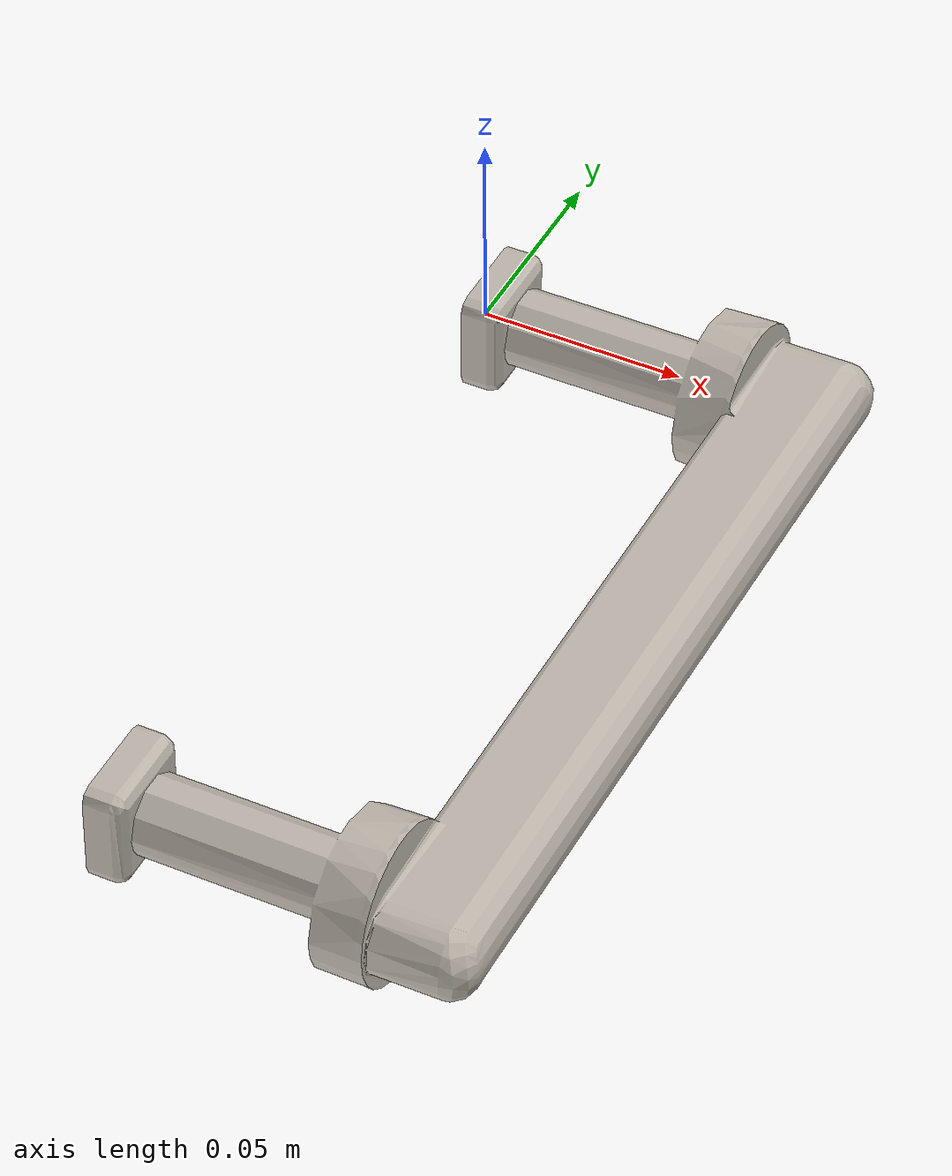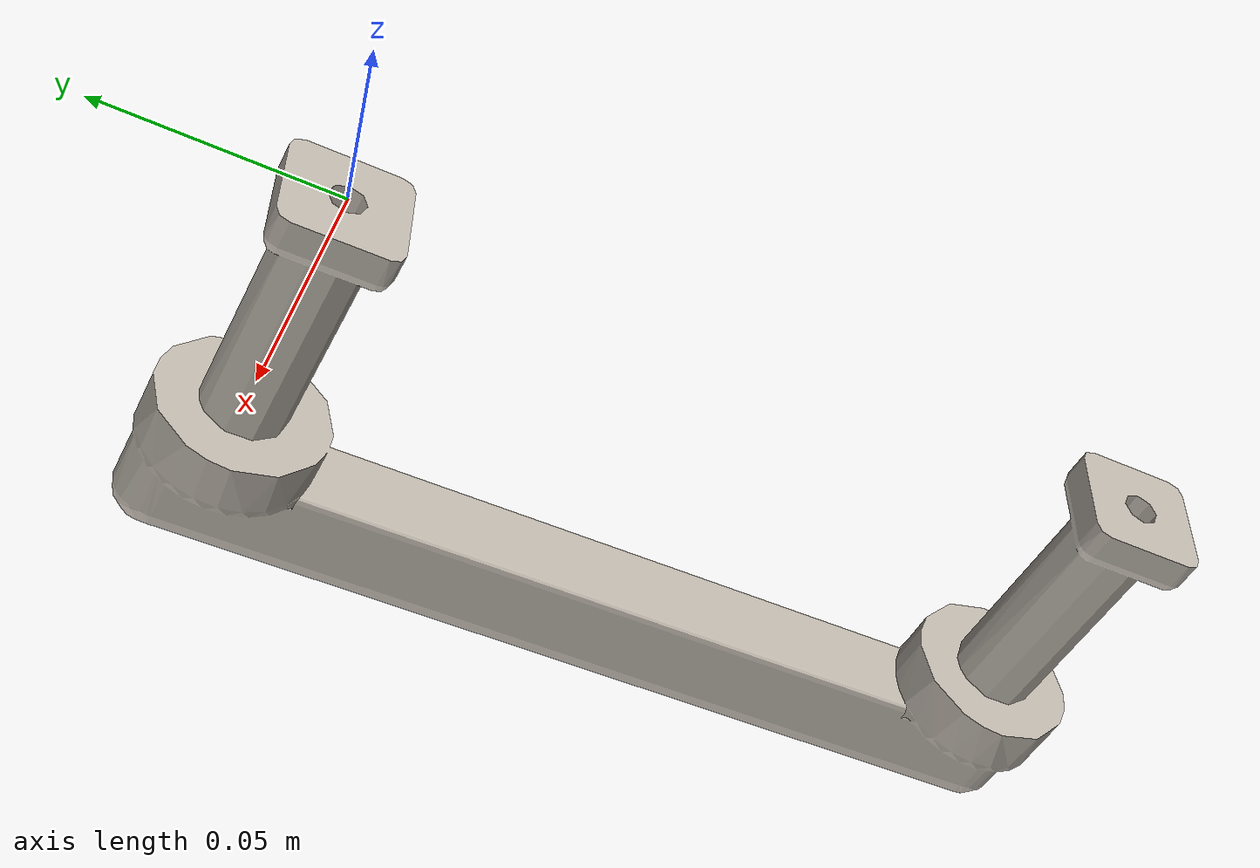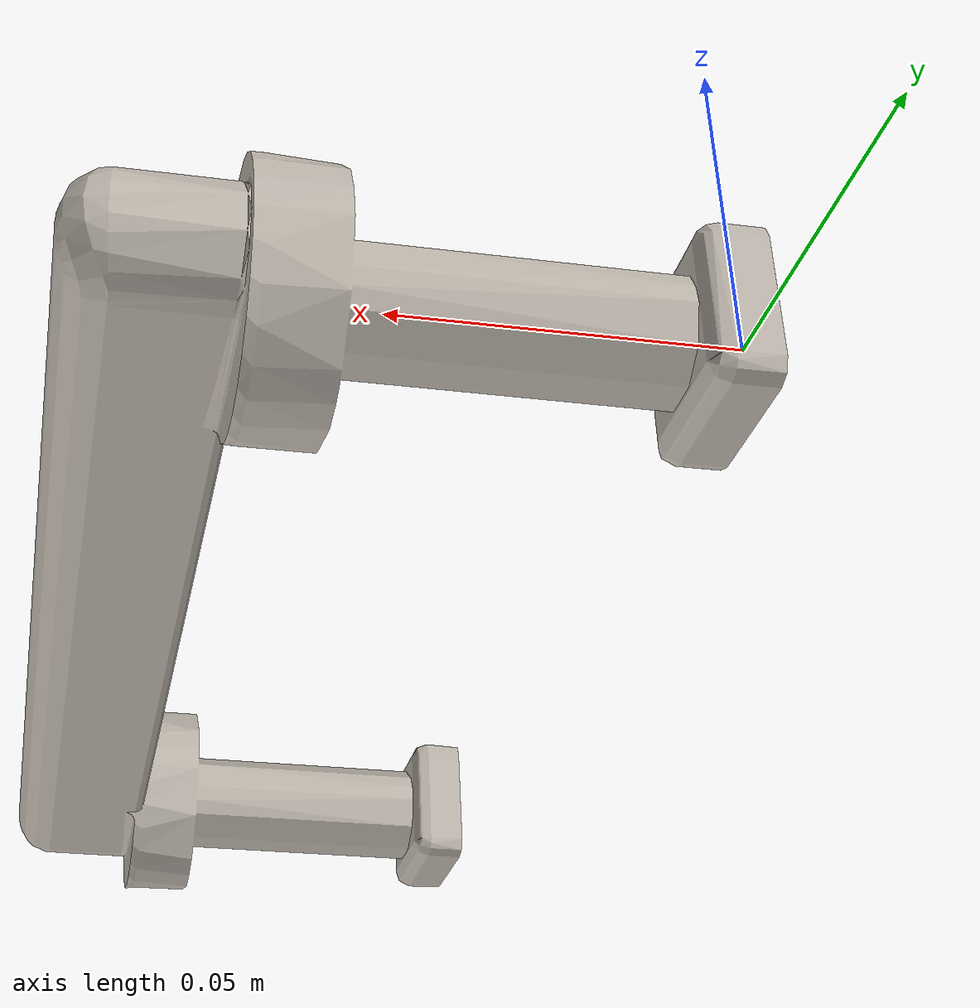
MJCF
<mujoco model="imetro_hatch_handle">
  <default>
    <default class="visual">
      <geom group="2" type="mesh" contype="0" conaffinity="0"/>
    </default>
    <default class="collision">
      <geom group="3" type="mesh"/>
    </default>
  </default>
  <asset>
    <texture type="2d" name="material_imetro_hatch_handle_0" file="material_imetro_hatch_handle_0.png"/>
    <material name="material_imetro_hatch_handle_0" texture="material_imetro_hatch_handle_0" specular="0.4000000000000001" shininess="0.001"/>
    <mesh file="imetro_hatch_handle.obj"/>
    <mesh file="imetro_hatch_handle_collision_0.obj"/>
    <mesh file="imetro_hatch_handle_collision_1.obj"/>
    <mesh file="imetro_hatch_handle_collision_2.obj"/>
    <mesh file="imetro_hatch_handle_collision_3.obj"/>
    <mesh file="imetro_hatch_handle_collision_4.obj"/>
    <mesh file="imetro_hatch_handle_collision_5.obj"/>
    <mesh file="imetro_hatch_handle_collision_6.obj"/>
    <mesh file="imetro_hatch_handle_collision_7.obj"/>
    <mesh file="imetro_hatch_handle_collision_8.obj"/>
  </asset>
  <worldbody>
    <body name="imetro_hatch_handle">
      <geom material="material_imetro_hatch_handle_0" mesh="imetro_hatch_handle" class="visual"/>
      <geom mesh="imetro_hatch_handle_collision_0" rgba="0.38859666792964287 0.9016760168858076 0.274963342985575 1" class="collision"/>
      <geom mesh="imetro_hatch_handle_collision_1" rgba="0.12435771217053371 0.6119353333740855 0.2581080622761913 1" class="collision"/>
      <geom mesh="imetro_hatch_handle_collision_2" rgba="0.7278014805197642 0.2173083359443937 0.43849163751293074 1" class="collision"/>
      <geom mesh="imetro_hatch_handle_collision_3" rgba="0.1752257497960562 0.41765995918551 0.2355267778433927 1" class="collision"/>
      <geom mesh="imetro_hatch_handle_collision_4" rgba="0.8115584310838968 0.6291413512392855 0.3436479510798881 1" class="collision"/>
      <geom mesh="imetro_hatch_handle_collision_5" rgba="0.07827906647263971 0.4063498389660444 0.5383780383971504 1" class="collision"/>
      <geom mesh="imetro_hatch_handle_collision_6" rgba="0.1171664588471183 0.4228382832409491 0.18740412608708323 1" class="collision"/>
      <geom mesh="imetro_hatch_handle_collision_7" rgba="0.7982998343083979 0.21058298943219367 0.7615960658771506 1" class="collision"/>
      <geom mesh="imetro_hatch_handle_collision_8" rgba="0.5308850338763978 0.5320274418634704 0.6469004282028774 1" class="collision"/>
    </body>
  </worldbody>
</mujoco>
